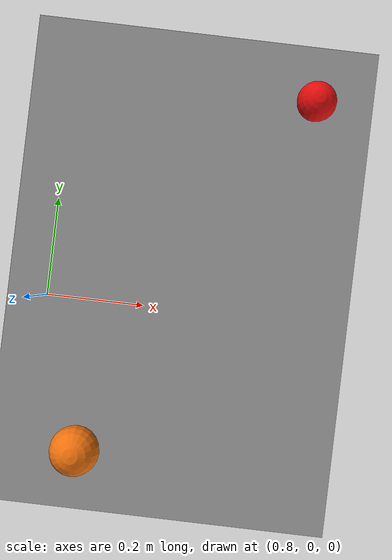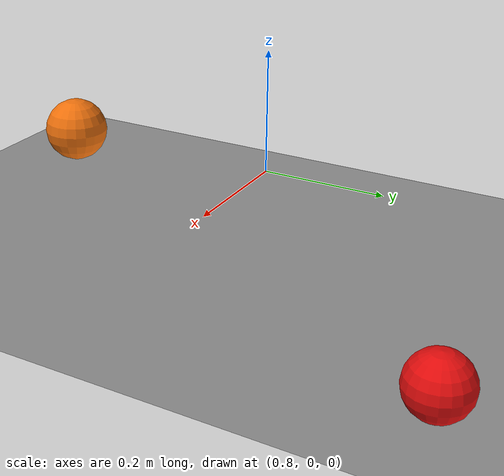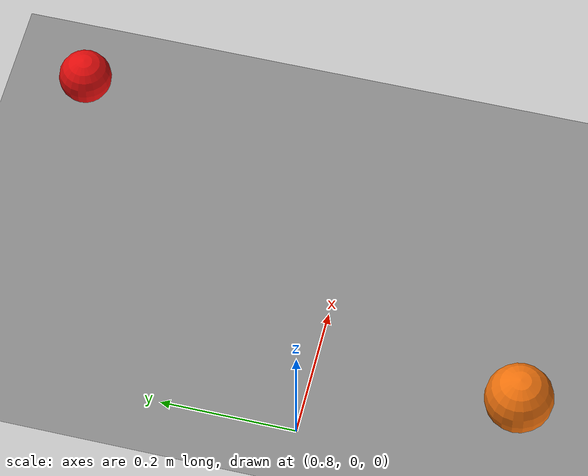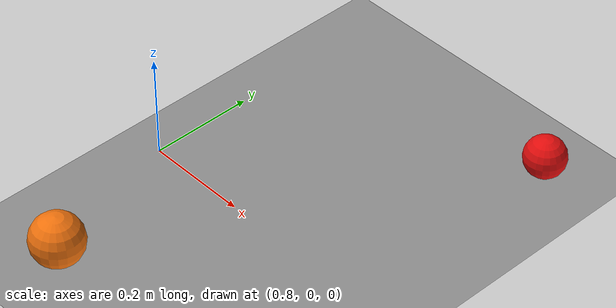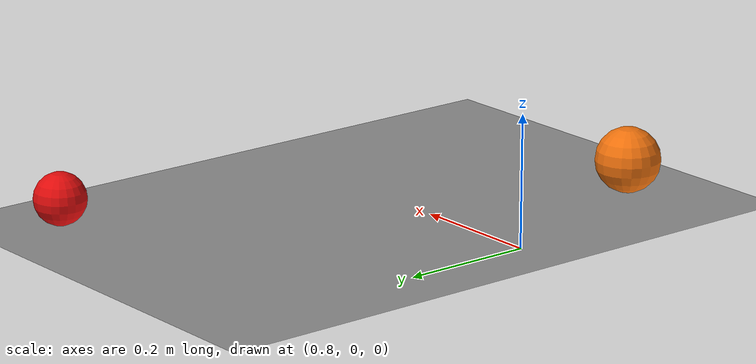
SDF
<?xml version="1.0"?>
<sdf version="1.9">
  <world name="track_challenge">
    <physics name="1ms" type="ignored">
      <max_step_size>0.001</max_step_size>
      <real_time_factor>1.0</real_time_factor>
    </physics>
    <plugin filename="gz-sim-physics-system" name="gz::sim::systems::Physics"/>
    <plugin filename="gz-sim-user-commands-system" name="gz::sim::systems::UserCommands"/>
    <plugin filename="gz-sim-scene-broadcaster-system" name="gz::sim::systems::SceneBroadcaster"/>
    <plugin filename="gz-sim-sensors-system" name="gz::sim::systems::Sensors">
      <render_engine>ogre2</render_engine>
    </plugin>
    <plugin filename="gz-sim-imu-system" name="gz::sim::systems::Imu"/>

    <scene>
      <ambient>0.6 0.6 0.6 1</ambient>
      <background>0.8 0.8 0.8 1</background>
      <grid>false</grid>
    </scene>

    <light type="directional" name="sun">
      <cast_shadows>true</cast_shadows>
      <pose>0 0 10 0 0 0</pose>
      <diffuse>0.9 0.9 0.9 1</diffuse>
      <specular>0.2 0.2 0.2 1</specular>
      <direction>-0.5 0.1 -0.9</direction>
    </light>

    <model name="ground_plane">
      <static>true</static>
      <link name="link">
        <collision name="c"><geometry><plane><normal>0 0 1</normal><size>6 6</size></plane></geometry></collision>
        <visual name="v"><geometry><plane><normal>0 0 1</normal><size>6 6</size></plane></geometry>
          <material><ambient>0.55 0.55 0.55 1</ambient><diffuse>0.55 0.55 0.55 1</diffuse></material></visual>
      </link>
    </model>
    <model name="red_ball">
      <static>true</static>
      <pose>1.3 0.45 0.04 0 0 0</pose>
      <link name="link"><visual name="v"><geometry><sphere><radius>0.04</radius></sphere></geometry>
        <material><ambient>0.9 0.05 0.05 1</ambient><diffuse>0.9 0.05 0.05 1</diffuse></material></visual></link>
    </model>
    <model name="orange_ball">
      <static>true</static>
      <pose>0.9 -0.3 0.05 0 0 0</pose>
      <link name="link"><visual name="v"><geometry><sphere><radius>0.05</radius></sphere></geometry>
        <material><ambient>0.95 0.45 0.05 1</ambient><diffuse>0.95 0.45 0.05 1</diffuse></material></visual></link>
    </model>
  </world>
</sdf>
